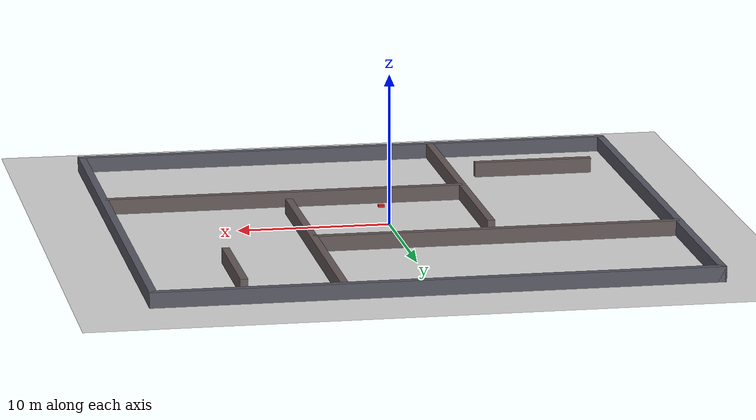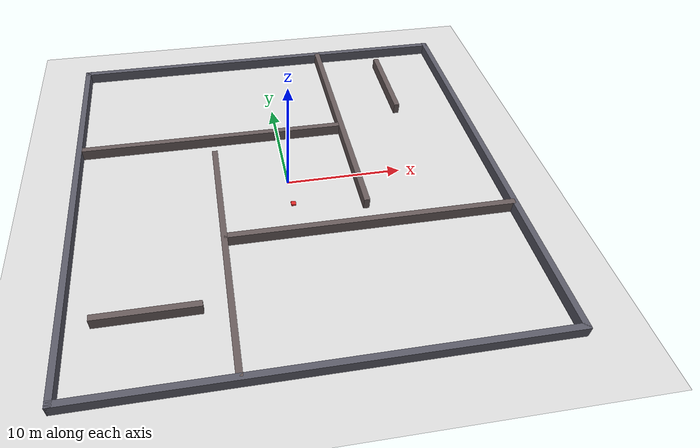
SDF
<?xml version="1.0" ?>
<sdf version="1.8">
  <world name="room">
    <physics name="1ms" type="ignored">
      <max_step_size>0.004</max_step_size>
      <real_time_factor>1.0</real_time_factor>
    </physics>
    <plugin filename="gz-sim-physics-system" name="gz::sim::systems::Physics"/>
    <plugin filename="gz-sim-user-commands-system" name="gz::sim::systems::UserCommands"/>
    <plugin filename="gz-sim-scene-broadcaster-system" name="gz::sim::systems::SceneBroadcaster"/>
    <plugin filename="gz-sim-sensors-system" name="gz::sim::systems::Sensors">
      <render_engine>ogre2</render_engine>
    </plugin>

    <light type="directional" name="sun">
      <cast_shadows>true</cast_shadows>
      <pose>0 0 10 0 0 0</pose>
      <diffuse>0.9 0.9 0.9 1</diffuse>
      <specular>0.2 0.2 0.2 1</specular>
      <direction>-0.5 0.1 -0.9</direction>
    </light>

    <model name="ground_plane">
      <static>true</static>
      <link name="link">
        <collision name="collision">
          <geometry><plane><normal>0 0 1</normal><size>60 60</size></plane></geometry>
        </collision>
        <visual name="visual">
          <geometry><plane><normal>0 0 1</normal><size>60 60</size></plane></geometry>
          <material><ambient>0.85 0.85 0.85 1</ambient><diffuse>0.85 0.85 0.85 1</diffuse></material>
        </visual>
      </link>
    </model>

    <!-- Walls: pose (x y z r p yaw), size (sx sy sz). All 0.5 m thick. -->
    <!-- Outer boundary (36 x 36 m). -->
    <model name="wall_n"><static>true</static><pose>0 18 0.5 0 0 0</pose>
      <link name="l"><collision name="c"><geometry><box><size>36.5 0.5 1</size></box></geometry></collision>
      <visual name="v"><geometry><box><size>36.5 0.5 1</size></box></geometry>
      <material><ambient>0.35 0.35 0.4 1</ambient><diffuse>0.35 0.35 0.4 1</diffuse></material></visual></link></model>
    <model name="wall_s"><static>true</static><pose>0 -18 0.5 0 0 0</pose>
      <link name="l"><collision name="c"><geometry><box><size>36.5 0.5 1</size></box></geometry></collision>
      <visual name="v"><geometry><box><size>36.5 0.5 1</size></box></geometry>
      <material><ambient>0.35 0.35 0.4 1</ambient><diffuse>0.35 0.35 0.4 1</diffuse></material></visual></link></model>
    <model name="wall_e"><static>true</static><pose>18 0 0.5 0 0 0</pose>
      <link name="l"><collision name="c"><geometry><box><size>0.5 36.5 1</size></box></geometry></collision>
      <visual name="v"><geometry><box><size>0.5 36.5 1</size></box></geometry>
      <material><ambient>0.35 0.35 0.4 1</ambient><diffuse>0.35 0.35 0.4 1</diffuse></material></visual></link></model>
    <model name="wall_w"><static>true</static><pose>-18 0 0.5 0 0 0</pose>
      <link name="l"><collision name="c"><geometry><box><size>0.5 36.5 1</size></box></geometry></collision>
      <visual name="v"><geometry><box><size>0.5 36.5 1</size></box></geometry>
      <material><ambient>0.35 0.35 0.4 1</ambient><diffuse>0.35 0.35 0.4 1</diffuse></material></visual></link></model>

    <!-- Internal partitions (each leaves a doorway gap so all rooms connect). -->
    <!-- Vertical wall at x=-6, y in [-18, 4] (gap at top). -->
    <model name="wall_v1"><static>true</static><pose>-6 -7 0.5 0 0 0</pose>
      <link name="l"><collision name="c"><geometry><box><size>0.5 22 1</size></box></geometry></collision>
      <visual name="v"><geometry><box><size>0.5 22 1</size></box></geometry>
      <material><ambient>0.4 0.35 0.35 1</ambient><diffuse>0.4 0.35 0.35 1</diffuse></material></visual></link></model>
    <!-- Vertical wall at x=6, y in [-4, 18] (gap at bottom). -->
    <model name="wall_v2"><static>true</static><pose>6 7 0.5 0 0 0</pose>
      <link name="l"><collision name="c"><geometry><box><size>0.5 22 1</size></box></geometry></collision>
      <visual name="v"><geometry><box><size>0.5 22 1</size></box></geometry>
      <material><ambient>0.4 0.35 0.35 1</ambient><diffuse>0.4 0.35 0.35 1</diffuse></material></visual></link></model>
    <!-- Horizontal wall at y=6, x in [-18, 6] (gap on the right). -->
    <model name="wall_h1"><static>true</static><pose>-6 6 0.5 0 0 0</pose>
      <link name="l"><collision name="c"><geometry><box><size>24 0.5 1</size></box></geometry></collision>
      <visual name="v"><geometry><box><size>24 0.5 1</size></box></geometry>
      <material><ambient>0.4 0.35 0.35 1</ambient><diffuse>0.4 0.35 0.35 1</diffuse></material></visual></link></model>
    <!-- Horizontal wall at y=-6, x in [-6, 18] (gap on the left). -->
    <model name="wall_h2"><static>true</static><pose>6 -6 0.5 0 0 0</pose>
      <link name="l"><collision name="c"><geometry><box><size>24 0.5 1</size></box></geometry></collision>
      <visual name="v"><geometry><box><size>24 0.5 1</size></box></geometry>
      <material><ambient>0.4 0.35 0.35 1</ambient><diffuse>0.4 0.35 0.35 1</diffuse></material></visual></link></model>
    <!-- Two short interior obstacles to break up the big rooms. -->
    <model name="wall_o1"><static>true</static><pose>-12 -12 0.5 0 0 0</pose>
      <link name="l"><collision name="c"><geometry><box><size>8 0.5 1</size></box></geometry></collision>
      <visual name="v"><geometry><box><size>8 0.5 1</size></box></geometry>
      <material><ambient>0.4 0.35 0.35 1</ambient><diffuse>0.4 0.35 0.35 1</diffuse></material></visual></link></model>
    <model name="wall_o2"><static>true</static><pose>12 12 0.5 0 0 0</pose>
      <link name="l"><collision name="c"><geometry><box><size>0.5 8 1</size></box></geometry></collision>
      <visual name="v"><geometry><box><size>0.5 8 1</size></box></geometry>
      <material><ambient>0.4 0.35 0.35 1</ambient><diffuse>0.4 0.35 0.35 1</diffuse></material></visual></link></model>

    <!-- Drone (kinematic, gpu_lidar). Starts in the lower-central room. -->
    <model name="drone1">
      <pose>0 -3 0.5 0 0 0</pose>
      <link name="base_link">
        <inertial><mass>1.0</mass>
          <inertia><ixx>0.02</ixx><iyy>0.02</iyy><izz>0.02</izz><ixy>0</ixy><ixz>0</ixz><iyz>0</iyz></inertia></inertial>
        <collision name="collision"><geometry><box><size>0.4 0.4 0.15</size></box></geometry></collision>
        <visual name="visual"><geometry><box><size>0.4 0.4 0.15</size></box></geometry>
          <material><ambient>0.85 0.15 0.15 1</ambient><diffuse>0.85 0.15 0.15 1</diffuse></material></visual>
        <sensor name="lidar" type="gpu_lidar">
          <pose>0 0 0.1 0 0 0</pose>
          <topic>/model/drone1/scan</topic>
          <update_rate>10</update_rate><always_on>1</always_on><visualize>true</visualize>
          <lidar>
            <scan><horizontal><samples>360</samples><resolution>1</resolution>
              <min_angle>-3.141592653589793</min_angle><max_angle>3.141592653589793</max_angle></horizontal>
              <vertical><samples>1</samples><min_angle>0</min_angle><max_angle>0</max_angle></vertical></scan>
            <range><min>0.25</min><max>12.0</max><resolution>0.01</resolution></range>
          </lidar>
        </sensor>
      </link>
      <plugin filename="gz-sim-velocity-control-system" name="gz::sim::systems::VelocityControl">
        <topic>/model/drone1/cmd_vel</topic>
      </plugin>
      <plugin filename="gz-sim-odometry-publisher-system" name="gz::sim::systems::OdometryPublisher">
        <odom_frame>odom</odom_frame><robot_base_frame>drone1</robot_base_frame>
        <dimensions>3</dimensions><odom_topic>/model/drone1/odometry</odom_topic>
        <odom_publish_frequency>30</odom_publish_frequency>
      </plugin>
    </model>
  </world>
</sdf>
